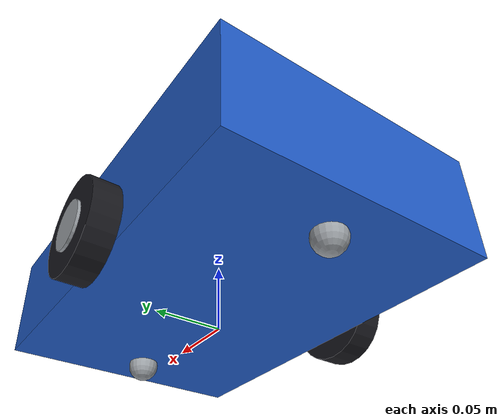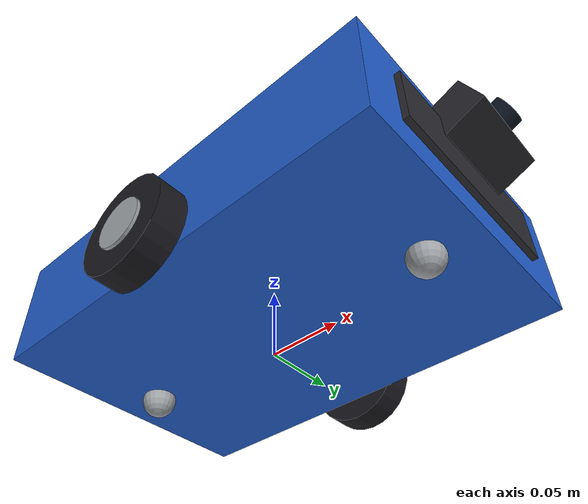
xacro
<?xml version="1.0"?>
<!-- 两轮差速底盘、前后万向轮、激光雷达和相机。TF 主链为 odom -> base_footprint -> base_link。 -->
<robot name="my_robot" xmlns:xacro="http://www.ros.org/wiki/xacro">
  <xacro:include filename="$(find my_robot)/urdf/sensors.xacro"/>

  <!-- 车身配色 -->
  <material name="mr_body">  <color rgba="0.13 0.36 0.78 1.0"/></material>
  <material name="mr_wheel"> <color rgba="0.10 0.10 0.12 1.0"/></material>

  <!-- 启动时可通过 enable_lidar 和 enable_camera 关闭传感器。 -->
  <xacro:arg name="enable_lidar"  default="true"/>
  <xacro:arg name="enable_camera" default="true"/>

  <!-- 几何参数，单位为米。 -->
  <xacro:property name="body_length" value="0.30"/>
  <xacro:property name="body_width"  value="0.20"/>
  <xacro:property name="body_height" value="0.08"/>
  <xacro:property name="body_z"      value="0.055"/>  <!-- base_link 离地高度 -->

  <xacro:property name="wheel_r"     value="0.035"/>
  <xacro:property name="wheel_w"     value="0.020"/>
  <xacro:property name="wheel_sep"   value="0.220"/>
  <xacro:property name="wheel_x"     value="-0.010"/>

  <!-- 轮心离地高度等于半径，否则车体会压地或悬空。 -->
  <xacro:property name="wheel_z"     value="${-(body_z - wheel_r)}"/>
  <xacro:property name="caster_r"    value="0.012"/>
  <xacro:property name="caster_z"    value="${-(body_z - caster_r)}"/>

  <!-- pi 是 xacro 内置符号。 -->
  <xacro:property name="mr_pi"       value="3.14159265"/>

  <!-- 惯性矩宏 -->
  <xacro:macro name="box_inertia" params="m x y z">
    <inertial>
      <mass value="${m}"/>
      <inertia ixx="${m*(y*y+z*z)/12.0}" ixy="0" ixz="0"
               iyy="${m*(x*x+z*z)/12.0}" iyz="0"
               izz="${m*(x*x+y*y)/12.0}"/>
    </inertial>
  </xacro:macro>

  <xacro:macro name="cyl_inertia" params="m r l">
    <inertial>
      <mass value="${m}"/>
      <inertia ixx="${m*(3.0*r*r+l*l)/12.0}" ixy="0" ixz="0"
               iyy="${m*(3.0*r*r+l*l)/12.0}" iyz="0"
               izz="${m*r*r/2.0}"/>
    </inertial>
  </xacro:macro>

  <!-- base_footprint 是车体的地面投影，也是 Gazebo 模型原点。 -->
  <link name="base_footprint"/>

  <link name="base_link">
    <visual>
      <origin xyz="0 0 0" rpy="0 0 0"/>
      <geometry><box size="${body_length} ${body_width} ${body_height}"/></geometry>
      <material name="mr_body"/>
    </visual>
    <visual>
      <origin xyz="-0.02 0 ${body_height/2 + 0.008}" rpy="0 0 0"/>
      <geometry><box size="${body_length*0.70} ${body_width*0.80} 0.016"/></geometry>
      <material name="mr_gray"/>
    </visual>
    <visual>
      <origin xyz="${body_length/2 + 0.002} 0 0" rpy="0 0 0"/>
      <geometry><box size="0.004 ${body_width*0.7} ${body_height*0.5}"/></geometry>
      <material name="mr_dark"/>
    </visual>
    <collision>
      <origin xyz="0 0 0" rpy="0 0 0"/>
      <geometry><box size="${body_length} ${body_width} ${body_height}"/></geometry>
    </collision>
    <xacro:box_inertia m="1.20" x="${body_length}" y="${body_width}" z="${body_height}"/>
  </link>

  <joint name="base_joint" type="fixed">
    <parent link="base_footprint"/>
    <child link="base_link"/>
    <origin xyz="0 0 ${body_z}" rpy="0 0 0"/>
  </joint>

  <!-- 左右驱动轮 -->
  <xacro:macro name="drive_wheel" params="side reflect">
    <link name="${side}_wheel_link">
      <visual>
        <origin xyz="0 0 0" rpy="${mr_pi/2} 0 0"/>
        <geometry><cylinder radius="${wheel_r}" length="${wheel_w}"/></geometry>
        <material name="mr_wheel"/>
      </visual>
      <visual>
        <origin xyz="0 0 0" rpy="${mr_pi/2} 0 0"/>
        <geometry><cylinder radius="${wheel_r*0.5}" length="${wheel_w*1.2}"/></geometry>
        <material name="mr_gray"/>
      </visual>
      <collision>
        <origin xyz="0 0 0" rpy="${mr_pi/2} 0 0"/>
        <geometry><cylinder radius="${wheel_r}" length="${wheel_w}"/></geometry>
      </collision>
      <xacro:cyl_inertia m="0.05" r="${wheel_r}" l="${wheel_w}"/>
    </link>

    <joint name="${side}_wheel_joint" type="continuous">
      <parent link="base_link"/>
      <child link="${side}_wheel_link"/>
      <origin xyz="${wheel_x} ${reflect*wheel_sep/2.0} ${wheel_z}" rpy="0 0 0"/>
      <axis xyz="0 1 0"/>
      <dynamics damping="0.02" friction="0.0"/>
    </joint>

    <gazebo reference="${side}_wheel_link">
      <!-- 驱动轮需要较高摩擦系数。 -->
      <mu1>1.0</mu1>
      <mu2>1.0</mu2>
      <kp>100000.0</kp>
      <kd>10.0</kd>
      <!-- 轮子压地不到 0.5 mm；更大的 minDepth 会让轮地接触失效。 -->
      <minDepth>0.0</minDepth>
      <maxVel>0.1</maxVel>
    </gazebo>
  </xacro:macro>

  <xacro:drive_wheel side="left"  reflect="1"/>
  <xacro:drive_wheel side="right" reflect="-1"/>

  <!-- 前后万向轮 -->
  <xacro:macro name="caster" params="name x">
    <link name="${name}_link">
      <visual>
        <origin xyz="0 0 0" rpy="0 0 0"/>
        <geometry><sphere radius="${caster_r}"/></geometry>
        <material name="mr_gray"/>
      </visual>
      <collision>
        <origin xyz="0 0 0" rpy="0 0 0"/>
        <geometry><sphere radius="${caster_r}"/></geometry>
      </collision>
      <inertial>
        <mass value="0.02"/>
        <inertia ixx="2.0e-6" ixy="0" ixz="0" iyy="2.0e-6" iyz="0" izz="2.0e-6"/>
      </inertial>
    </link>

    <joint name="${name}_joint" type="fixed">
      <parent link="base_link"/>
      <child link="${name}_link"/>
      <origin xyz="${x} 0 ${caster_z}" rpy="0 0 0"/>
    </joint>

    <gazebo reference="${name}_link">
      <!-- 万向轮靠滑动转向；0.4 的摩擦系数可抑制静止时缓慢滑移。 -->
      <mu1>0.4</mu1>
      <mu2>0.4</mu2>
      <kp>100000.0</kp>
      <kd>10.0</kd>
    </gazebo>
  </xacro:macro>

  <xacro:caster name="caster_front" x="${body_length/2 - 0.035}"/>
  <xacro:caster name="caster_rear"  x="${-body_length/2 + 0.035}"/>

  <!-- 雷达扫描平面离地约 0.12 m。 -->
  <xacro:if value="$(arg enable_lidar)">
    <xacro:my_lidar_360 prefix="" parent="base_link" xyz="0.020 0 ${body_height/2 + 0.025}"/>
  </xacro:if>
  <!-- 相机沿车体 +x 方向观察。 -->
  <xacro:if value="$(arg enable_camera)">
    <xacro:my_camera prefix="" parent="base_link" xyz="${body_length/2 + 0.012} 0 0.022"/>
  </xacro:if>

  <!-- Gazebo 插件 -->
  <gazebo>
    <!-- 差速驱动: 订阅 /cmd_vel, 发布 /odom 与 odom->base_footprint 的 TF -->
    <plugin name="diff_drive" filename="libgazebo_ros_diff_drive.so">
      <ros>
        <namespace>/</namespace>
      </ros>
      <update_rate>50</update_rate>
      <left_joint>left_wheel_joint</left_joint>
      <right_joint>right_wheel_joint</right_joint>
      <wheel_separation>${wheel_sep}</wheel_separation>
      <wheel_diameter>${2*wheel_r}</wheel_diameter>
      <max_wheel_torque>5.0</max_wheel_torque>
      <max_wheel_acceleration>5.0</max_wheel_acceleration>
      <command_topic>cmd_vel</command_topic>
      <odometry_topic>odom</odometry_topic>
      <odometry_frame>odom</odometry_frame>
      <robot_base_frame>base_footprint</robot_base_frame>
      <publish_odom>true</publish_odom>
      <publish_odom_tf>true</publish_odom_tf>
      <!-- 轮子 TF 由 robot_state_publisher 发布，避免重复。 -->
      <publish_wheel_tf>false</publish_wheel_tf>
      <odometry_source>1</odometry_source>
    </plugin>

    <!-- 为 robot_state_publisher 提供轮子关节状态。 -->
    <plugin name="joint_state_publisher" filename="libgazebo_ros_joint_state_publisher.so">
      <ros>
        <namespace>/</namespace>
      </ros>
      <update_rate>50</update_rate>
      <joint_name>left_wheel_joint</joint_name>
      <joint_name>right_wheel_joint</joint_name>
    </plugin>
  </gazebo>

  <gazebo reference="base_link">
    <mu1>0.6</mu1>
    <mu2>0.6</mu2>
    <kp>100000.0</kp>
    <kd>10.0</kd>
    <selfCollide>false</selfCollide>
  </gazebo>

</robot>

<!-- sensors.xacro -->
<!-- xyz 是传感器相对 parent link 的位置；相机沿 +x 方向观察。 -->
<robot xmlns:xacro="http://www.ros.org/wiki/xacro">

  <!-- 传感器材质 -->
  <material name="mr_dark">   <color rgba="0.16 0.16 0.18 1.0"/></material>
  <material name="mr_glass">  <color rgba="0.05 0.09 0.14 1.0"/></material>
  <material name="mr_gray">   <color rgba="0.62 0.64 0.66 1.0"/></material>

  <!-- 360° 激光雷达 -->
  <xacro:macro name="my_lidar_360" params="prefix parent xyz samples:=360 update_rate:=10.0 range_max:=12.0">
    <link name="${prefix}lidar_link">
      <visual>
        <origin xyz="0 0 0" rpy="0 0 0"/>
        <geometry><cylinder radius="0.035" length="0.040"/></geometry>
        <material name="mr_dark"/>
      </visual>
      <visual>
        <origin xyz="0 0 0.006" rpy="0 0 0"/>
        <geometry><cylinder radius="0.031" length="0.020"/></geometry>
        <material name="mr_glass"/>
      </visual>
      <collision>
        <origin xyz="0 0 0" rpy="0 0 0"/>
        <geometry><cylinder radius="0.035" length="0.040"/></geometry>
      </collision>
      <inertial>
        <mass value="0.06"/>
        <inertia ixx="2.0e-5" ixy="0" ixz="0" iyy="2.0e-5" iyz="0" izz="2.0e-5"/>
      </inertial>
    </link>

    <joint name="${prefix}lidar_joint" type="fixed">
      <parent link="${parent}"/>
      <child link="${prefix}lidar_link"/>
      <origin xyz="${xyz}" rpy="0 0 0"/>
    </joint>

    <gazebo reference="${prefix}lidar_link">
      <sensor name="lidar" type="ray">
        <always_on>true</always_on>
        <visualize>false</visualize>
        <update_rate>${update_rate}</update_rate>
        <ray>
          <scan>
            <horizontal>
              <samples>${samples}</samples>
              <resolution>1.0</resolution>
              <!-- 扫描范围：-pi 到 +pi。 -->
              <min_angle>-3.14159265</min_angle>
              <max_angle>3.14159265</max_angle>
            </horizontal>
          </scan>
          <range>
            <min>0.05</min>
            <max>${range_max}</max>
            <resolution>0.01</resolution>
          </range>
          <noise>
            <type>gaussian</type>
            <mean>0.0</mean>
            <stddev>0.008</stddev>
          </noise>
        </ray>
        <plugin name="lidar_controller" filename="libgazebo_ros_ray_sensor.so">
          <ros>
            <namespace>/</namespace>
            <!-- ~/out 映射到 /scan。 -->
            <remapping>~/out:=scan</remapping>
          </ros>
          <output_type>sensor_msgs/LaserScan</output_type>
          <frame_name>${prefix}lidar_link</frame_name>
        </plugin>
      </sensor>
    </gazebo>
  </xacro:macro>

  <!-- 单目相机 -->
  <xacro:macro name="my_camera" params="prefix parent xyz fov:=1.6 width:=960 height:=720 update_rate:=8.0">
    <link name="${prefix}camera_link">
      <visual>
        <origin xyz="0 0 0" rpy="0 0 0"/>
        <geometry><box size="0.028 0.060 0.028"/></geometry>
        <material name="mr_dark"/>
      </visual>
      <visual>
        <origin xyz="0.017 0 0" rpy="0 1.5707963 0"/>
        <geometry><cylinder radius="0.010" length="0.012"/></geometry>
        <material name="mr_glass"/>
      </visual>
      <collision>
        <origin xyz="0 0 0" rpy="0 0 0"/>
        <geometry><box size="0.028 0.060 0.028"/></geometry>
      </collision>
      <inertial>
        <mass value="0.03"/>
        <inertia ixx="3.0e-6" ixy="0" ixz="0" iyy="3.0e-6" iyz="0" izz="3.0e-6"/>
      </inertial>
    </link>

    <joint name="${prefix}camera_joint" type="fixed">
      <parent link="${parent}"/>
      <child link="${prefix}camera_link"/>
      <!-- 向上看约 23°，在红灯停车线前仍能看见高处的灯盘。 -->
      <origin xyz="${xyz}" rpy="0 -0.4 0"/>
    </joint>

    <gazebo reference="${prefix}camera_link">
      <sensor name="camera" type="camera">
        <always_on>true</always_on>
        <visualize>false</visualize>
        <update_rate>${update_rate}</update_rate>
        <camera>
          <horizontal_fov>${fov}</horizontal_fov>
          <image>
            <width>${width}</width>
            <height>${height}</height>
            <format>R8G8B8</format>
          </image>
          <clip>
            <near>0.05</near>
            <far>50.0</far>
          </clip>
        </camera>
        <plugin name="camera_controller" filename="libgazebo_ros_camera.so">
          <ros>
            <namespace>/</namespace>
          </ros>
          <!-- camera_name 决定 /camera/image_raw 和 /camera/camera_info 的前缀。 -->
          <camera_name>camera</camera_name>
          <frame_name>${prefix}camera_link</frame_name>
        </plugin>
      </sensor>
    </gazebo>
  </xacro:macro>

</robot>
